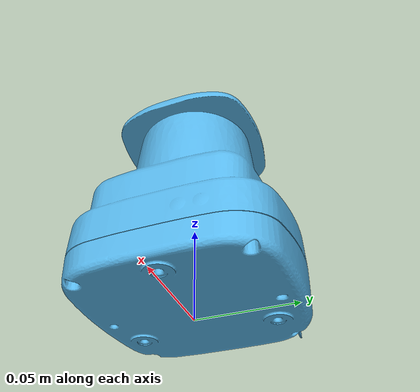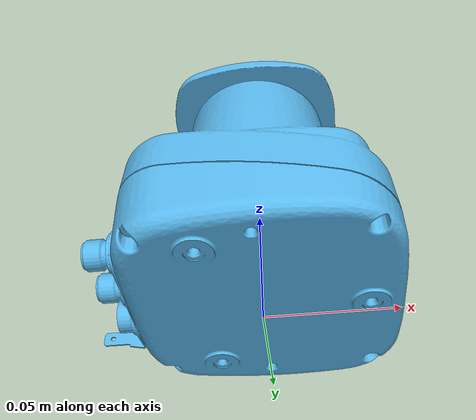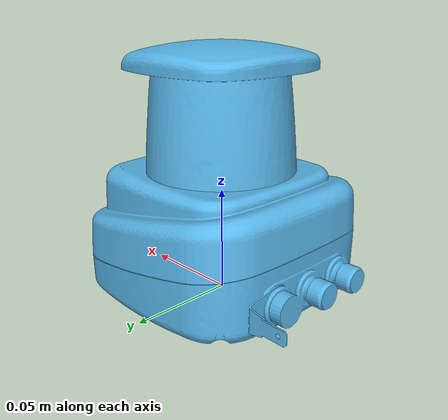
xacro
<?xml version="1.0"?>
<robot xmlns:xacro="http://wiki.ros.org/xacro" name="fishbot" >

    <!-- create a virtual root link -->
    <link name="base_footprint" />

    <!-- instantiate r2300 macro -->
    <link name="scanner_link" >
        <visual>
            <origin xyz="0 0 0" rpy="0 0 0" />
            <geometry>
                <mesh filename="package://orient_description/fishbot/meshes/R2000.stl" scale="0.001 0.001 0.001" />
            </geometry>
        </visual>
    </link>

    <!-- connect world link to scanner link -->
    <joint name="world_joint" type="fixed">
        <parent link="base_footprint" />
        <child link = "scanner_link" />
        <origin xyz="0.0 0.0 0.10" rpy="0.0 0.0 0.0" />
    </joint>
</robot>
